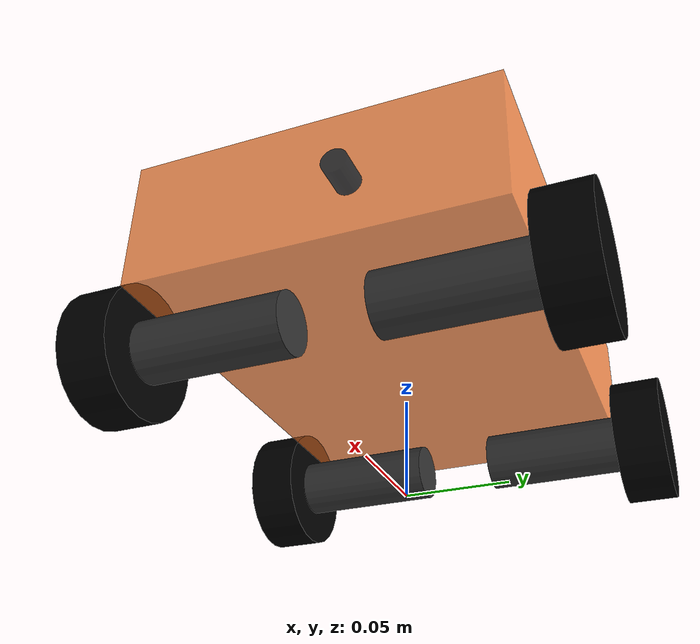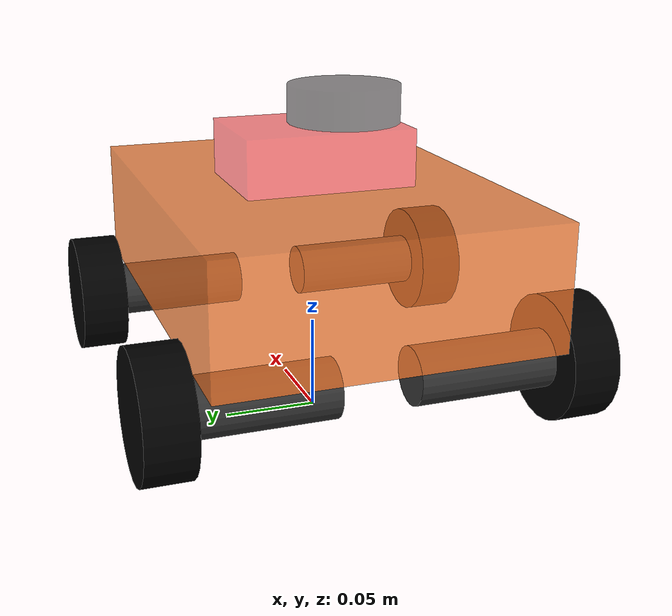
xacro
<robot name="my_car" xmlns:xacro="http://wiki.ros.org/xacro">
    <!-- 包含底盘、摄像头与雷达的 xacro 文件 -->
    <xacro:include filename="chassis.xacro" />
    <xacro:include filename="camera.xacro" />
    <xacro:include filename="laser.xacro" />
    <xacro:include filename="imu.xacro" />

</robot>

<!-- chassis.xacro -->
<robot name="my_car" xmlns:xacro="http://wiki.ros.org/xacro">

    <!-- 1. footprint 小球半径 -->
    <xacro:property name="footprint_radius" value="0.001" />

    <!-- 2. 主体参数（你给的） -->
    <!-- 主体：长0.24m，宽0.175m，高0.065m -->
    <xacro:property name="base_l" value="0.24" />
    <xacro:property name="base_w" value="0.175" />
    <xacro:property name="base_h" value="0.065" />

    <!-- 3.一些常量 -->
    <xacro:property name="PI" value="3.1415926" />

    <!-- (1)主体中心相对地面的高度-->
    <!-- 底部到地面 = 轮子直径
         主体中心 = 轮子直径 + 主体高度/2
    -->
    <xacro:property name="base_center_z" value="${wheel_radius*2 + base_h/2}" />

    <!-- (2)轮子参数 -->
    <!-- 半径 0.065m；宽0.025m -->
    <xacro:property name="wheel_radius" value="0.0325" />
    <xacro:property name="wheel_width"  value="0.025" />

    <!-- 轮子在 y 方向（前后）的偏移：
         就是贴着电机即可，要带上一个轮胎宽度
    -->
    <xacro:property name="wheel_y_offset" value="${wheel_width/2}" />

    <!-- (3)电机尺寸。长度是带轴了的-->
    <xacro:property name="motor_radius" value="0.015" />
    <xacro:property name="motor_length" value="0.0725" />

    <!-- 电机中心距离 base_link x方向偏移
         base_l/2 - 轮子半径
    -->
    <xacro:property name="motor_x_offset" value="${base_l/2 - wheel_radius}" />
    <!-- 电机中心相对 base_link 的 y 偏移：
         这里简单取在主体侧面附近：base_w/2 - 电机（带轴）长/2 + 实际主体和轮子间距离0.005
         轮子会比电机再往外 2.5mm
    -->
    <xacro:property name="motor_y_offset" value="${base_w/2 - motor_length/2  + 0.005}" />

    <!-- 电机中心距离 base_link 的 z 偏移
         base_h/2 + 电机半径
    -->
    <xacro:property name="motor_z_offset" value="${-(base_h/2 + motor_radius)}" />
    <!-- =========================
         1. base_footprint
       ========================= -->
    <link name="base_footprint">
        <visual>
            <geometry>
                <sphere radius="${footprint_radius}" />
            </geometry>
            <origin xyz="0 0 0" rpy="0 0 0" />
            <material name="footprint_color">
                <color rgba="0 0 1 0.5" />
            </material>
        </visual>
    </link>

    <!-- =========================
         2. 主体 base_link
       ========================= -->
    <link name="base_link">
        <visual>
            <geometry>
                <!-- 主体用 box 表示 -->
                <box size="${base_l} ${base_w} ${base_h}" />
            </geometry>
            <origin xyz="0 0 0" rpy="0 0 0" />
            <material name="base_color">
                <color rgba="1.0 0.5 0.2 0.8" />
            </material>
        </visual>

        <collision>
            <geometry>
                <box size="${base_l} ${base_w} ${base_h}" />
            </geometry>
            <origin xyz="0 0 0" rpy="0 0 0" />
        </collision>
    </link>

    <!-- base_footprint -> base_link （固定） -->
    <joint name="base_footprint_to_base_link" type="fixed">
        <parent link="base_footprint" />
        <child  link="base_link" />
        <!-- base_link 中心在 z = base_center_z -->
        <origin xyz="0 0 ${base_center_z}" rpy="0 0 0" />
    </joint>

    <!-- =========================
         3. 电机 + 轮子 宏封装 (结构B)
       ========================= -->
    <!--
        name : 轮组名称前缀（front_left, front_right 等）
        xs   : x 方向符号（前 +1，后 -1）
        ys   : y 方向符号（左 +1，右 -1）
    -->
    <xacro:macro name="motor_wheel_unit" params="name xs ys zs">

        <!-- 3-1. 电机 link -->
        <link name="${name}_motor">
            <visual>
                <geometry>
                    <!-- 电机用小长方体表示 -->
                    <cylinder radius="${motor_radius}" length="${motor_length}" />
                </geometry>
                <origin xyz="0 0 0" rpy="${PI/2} 0 0" />
                <material name="motor_color">
                    <color rgba="0.2 0.2 0.2 1.0" />
                </material>
            </visual>

            <collision>
                <geometry>
                    <cylinder radius="${motor_radius}" length="${motor_length}" />
                </geometry>
                <origin xyz="0 0 0" rpy="${PI/2} 0 0" />
            </collision>
        </link>

        <!-- base_link -> 电机 (固定关节)，电机紧贴主体侧面 -->
        <joint name="${name}_motor_joint" type="fixed">
            <parent link="base_link" />
            <child  link="${name}_motor" />
            <!--
                x: 前后偏移 ±motor_x_offset（和轮子差不多位置）
                y: 左右偏移 ±motor_y_offset（在主体侧面）
                z: motor_z_offset
            -->
            <origin xyz="${motor_x_offset * xs} ${motor_y_offset * ys} ${motor_z_offset * zs}" rpy="0 0 0" />
        </joint>

        <!-- 3-2. 轮子 link -->
        <link name="${name}_wheel">
            <visual>
                <geometry>
                    <cylinder radius="${wheel_radius}" length="${wheel_width}" />
                </geometry>
                <!-- 轮子转轴沿 y 轴，圆柱默认沿 z 轴，绕 x 轴旋转 90° -->
                <origin xyz="0 0 0" rpy="${PI/2} 0 0" />
                <material name="wheel_color">
                    <color rgba="0 0 0 1.0" />
                </material>
            </visual>

            <collision>
                <geometry>
                    <cylinder radius="${wheel_radius}" length="${wheel_width}" />
                </geometry>
                <origin xyz="0 0 0" rpy="${PI/2} 0 0" />
            </collision>
        </link>

        <!-- 电机 -> 轮子 (连续关节) -->
        <joint name="${name}_wheel_joint" type="continuous">
            <parent link="${name}_motor" />
            <child  link="${name}_wheel" />
            <origin xyz="0 ${(wheel_y_offset + motor_length/2) * ys} 0" rpy="0 0 0" />
            <!-- 绕 y 轴转动 -->
            <axis xyz="0 1 0" />
        </joint>

    </xacro:macro>

    <!-- =========================
         4. 四个电机+轮子实例
       ========================= -->
    <!-- ROS 坐标：x 向前，y 向左，z 向上 -->
    <!-- 前左：x+, y+ -->
    <xacro:motor_wheel_unit name="front_left"  xs="1"  ys="1" zs="1" />
    <!-- 前右：x+, y- -->
    <xacro:motor_wheel_unit name="front_right" xs="1"  ys="-1" zs="1" />
    <!-- 后左：x-, y+ -->
    <xacro:motor_wheel_unit name="rear_left"   xs="-1" ys="1" zs="1" />
    <!-- 后右：x-, y- -->
    <xacro:motor_wheel_unit name="rear_right"  xs="-1" ys="-1" zs="1" />

</robot>

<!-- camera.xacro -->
<robot name="mycar" xmlns:xacro="http://wiki.ros.org/xacro">
    <!--摄像头-->

    <!-- 1.自身尺寸 -->
    <xacro:property name="camera_radius" value="0.006" />
    <xacro:property name="camera_length" value="0.015" />
    <!-- 2.距离base_link位姿-->
    <xacro:property name="joint_camera_x" value="${base_l/2 + camera_length/2}" />
    <xacro:property name="joint_camera_y" value="${base_w/2 - 0.068}" />
    <xacro:property name="joint_camera_z" value="${-base_h/2 + 0.025}" />  <!-- 小车底盘高度 / 2 + 摄像头高度 / 2-->
    <!-- 3..相机link -->
    <link name="camera">
        <visual>
            <geometry>
                <cylinder radius="${camera_radius}" length="${camera_length}" />
            </geometry>
            <origin xyz="0 0 0" rpy="0 ${PI/2} 0" />
            <material name="black">
                <color rgba="0 0 0 0.8" />
            </material>
        </visual>
        <collision>
            <geometry>
                <cylinder radius="${motor_radius}" length="${motor_length}" />
            </geometry>
            <origin xyz="0 0 0" rpy="0 ${PI/2} 0" />
            </collision>
    </link>
    <!-- 3..相机joint -->
    <joint name="camera2base" type="fixed" >
        <parent link="base_link" />
        <child link="camera" />
        <origin xyz="${joint_camera_x} ${joint_camera_y} ${joint_camera_z}" rpy="0 0 0" />
    </joint>
</robot>

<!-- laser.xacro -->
<robot name="mycar" xmlns:xacro="http://wiki.ros.org/xacro">

    <!-- 1.封装雷达和底座的自身尺寸-->
    <xacro:property name="support_l" value="0.09" />
    <xacro:property name="support_w" value="0.065" />
    <xacro:property name="support_h" value="0.03" />
    <xacro:property name="laser_radius" value="0.03" />
    <xacro:property name="laser_length" value="0.02" />

    <!-- 2.雷达和底座偏移量-->
    <xacro:property name="joint_support_z" value="${base_h/2 + support_h/2}" />
    <xacro:property name="joint_laser_y" value="-0.0174" />
    <xacro:property name="joint_laser_z" value="${support_h/2 + laser_length/2}" />

    <!-- 3.支架  -->
    <link name="support">
        <visual>
            <geometry>
                <box size="${support_l} ${support_w} ${support_h}" />
            </geometry>
            <origin xyz="0 0 0" rpy="0 0 ${PI/2}" />
            <material name="support_color">
                <color rgba="1 0 0 0.5" />
            </material>
        </visual>
        <collision>
            <geometry>
                <box size="${support_l} ${support_w} ${support_h}" />
            </geometry>
            <origin xyz="0 0 0" rpy="0 0 ${PI/2}" />
        </collision>
    </link>

    <joint name="support2base" type="fixed">
        <parent link="base_link" />
        <child link="support" />
        <origin xyz="0 0 ${joint_support_z}" rpy="0 0 0 " />

    </joint>

    <!-- 4.雷达  -->
        <link name="laser">
        <visual>
            <geometry>
                <cylinder radius="${laser_radius}" length="${laser_length}" />
            </geometry>
            <material name="black">
                <color rgba="0 0 0 0.5" />
            </material>
        </visual>
        <collision>
            <geometry>
                <cylinder radius="${laser_radius}" length="${laser_length}" />
            </geometry>
            <material name="black">
                <color rgba="0 0 0 0.5" />
            </material>
        </collision>
    </link>

    <joint name="laser2support" type="fixed">
        <parent link="support" />
        <child link="laser" />
        <origin xyz="0 ${joint_laser_y} ${joint_laser_z}" rpy="0 0 ${PI/2} " />

    </joint>
</robot>

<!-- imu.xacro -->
<robot name="mycar" xmlns:xacro="http://wiki.ros.org/xacro">
    <!-- 1.自身尺寸（板子：长31mm，宽24mm，高度忽略但给个薄值便于显示） -->
    <xacro:property name="imu_size_x" value="0.031" />
    <xacro:property name="imu_size_y" value="0.024" />
    <xacro:property name="imu_size_z" value="0.0016" />  <!-- 厚1.6mm -->

    <!-- 2.距离base_link位姿（你给的偏移） -->
    <xacro:property name="joint_imu_x" value="-0.005" />
    <xacro:property name="joint_imu_y" value="-0.027" />
    <xacro:property name="joint_imu_z" value="-${base_h/2 - imu_size_z}" />  <!-- 相对于主体（盒子）来说在底部,然后imu又整块在上方 => 加上imu高度-->

    <!-- 3.IMU link -->
    <link name="imu_link">
    <visual>
        <geometry>
        <box size="${imu_size_x} ${imu_size_y} ${imu_size_z}" />
        </geometry>
        <!-- 与base_link同向 -->
        <origin xyz="0 0 0" rpy="0 0 0" />
        <material name="gray">
        <color rgba="0.5 0.5 0.5 0.8" />
        </material>
    </visual>

    <collision>
        <geometry>
        <box size="${imu_size_x} ${imu_size_y} ${imu_size_z}" />
        </geometry>
        <origin xyz="0 0 0" rpy="0 0 0" />
    </collision>

    </link>

    <!-- 4.IMU joint -->
    <joint name="imu2base" type="fixed">
    <parent link="base_link" />
    <child link="imu_link" />
    <origin xyz="${joint_imu_x} ${joint_imu_y} ${joint_imu_z}" rpy="0 0 0" />
    </joint>

</robot>
